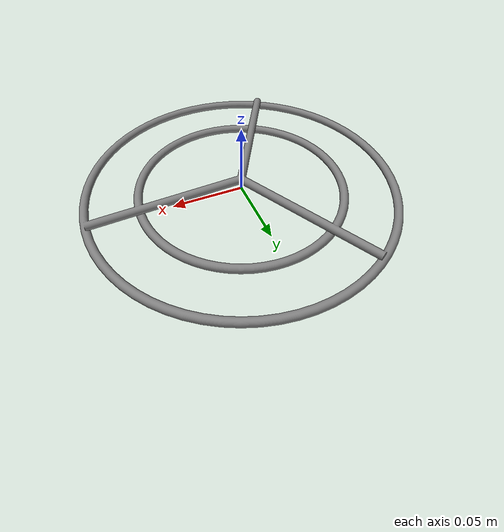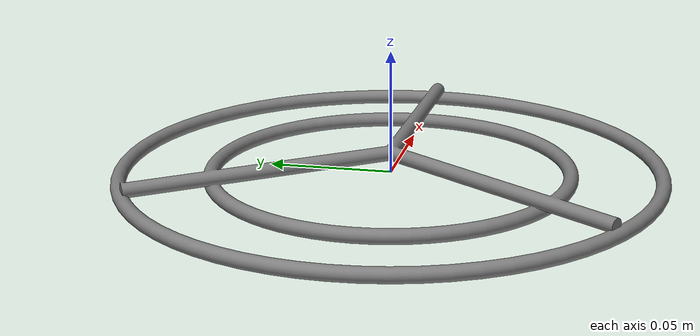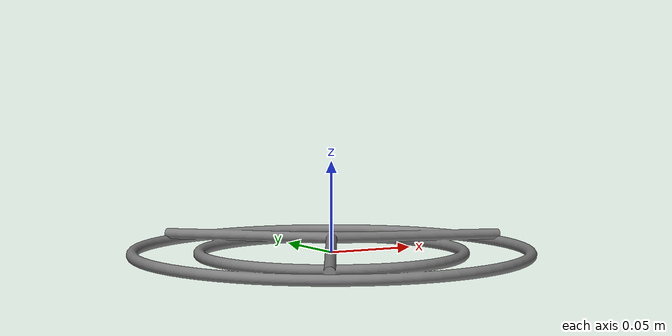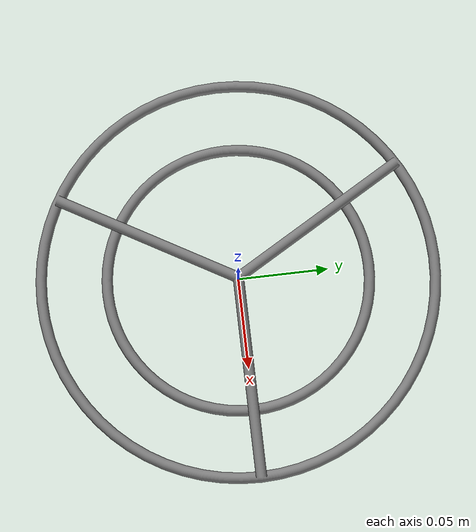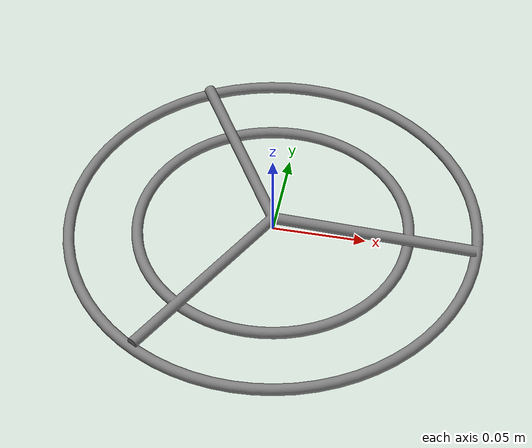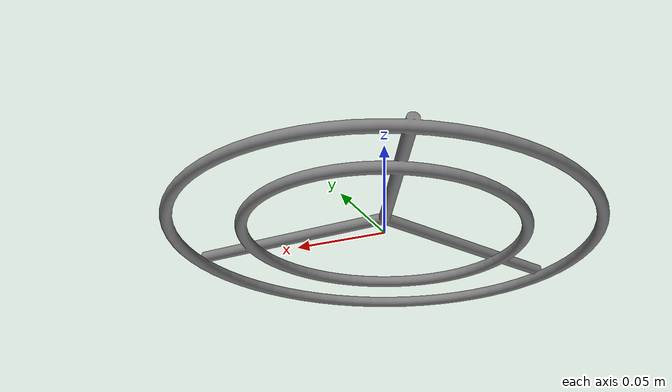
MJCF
<mujoco model="wine_glass_rack_base">
  <default>
    <default class="visual">
      <geom group="2" type="mesh" contype="0" conaffinity="0"/>
    </default>
    <default class="collision">
      <geom group="3" type="mesh"/>
    </default>
  </default>
  <asset>
    <mesh file="wine_glass_rack_base.obj"/>
    <mesh file="wine_glass_rack_base_collision_0.obj"/>
    <mesh file="wine_glass_rack_base_collision_1.obj"/>
    <mesh file="wine_glass_rack_base_collision_2.obj"/>
    <mesh file="wine_glass_rack_base_collision_3.obj"/>
    <mesh file="wine_glass_rack_base_collision_4.obj"/>
    <mesh file="wine_glass_rack_base_collision_5.obj"/>
    <mesh file="wine_glass_rack_base_collision_6.obj"/>
    <mesh file="wine_glass_rack_base_collision_7.obj"/>
    <mesh file="wine_glass_rack_base_collision_8.obj"/>
    <mesh file="wine_glass_rack_base_collision_9.obj"/>
    <mesh file="wine_glass_rack_base_collision_10.obj"/>
    <mesh file="wine_glass_rack_base_collision_11.obj"/>
    <mesh file="wine_glass_rack_base_collision_12.obj"/>
    <mesh file="wine_glass_rack_base_collision_13.obj"/>
    <mesh file="wine_glass_rack_base_collision_14.obj"/>
    <mesh file="wine_glass_rack_base_collision_15.obj"/>
    <mesh file="wine_glass_rack_base_collision_16.obj"/>
    <mesh file="wine_glass_rack_base_collision_17.obj"/>
    <mesh file="wine_glass_rack_base_collision_18.obj"/>
    <mesh file="wine_glass_rack_base_collision_19.obj"/>
    <mesh file="wine_glass_rack_base_collision_20.obj"/>
    <mesh file="wine_glass_rack_base_collision_21.obj"/>
    <mesh file="wine_glass_rack_base_collision_22.obj"/>
    <mesh file="wine_glass_rack_base_collision_23.obj"/>
    <mesh file="wine_glass_rack_base_collision_24.obj"/>
    <mesh file="wine_glass_rack_base_collision_25.obj"/>
    <mesh file="wine_glass_rack_base_collision_26.obj"/>
    <mesh file="wine_glass_rack_base_collision_27.obj"/>
    <mesh file="wine_glass_rack_base_collision_28.obj"/>
    <mesh file="wine_glass_rack_base_collision_29.obj"/>
    <mesh file="wine_glass_rack_base_collision_30.obj"/>
    <mesh file="wine_glass_rack_base_collision_31.obj"/>
    <mesh file="wine_glass_rack_base_collision_32.obj"/>
    <mesh file="wine_glass_rack_base_collision_33.obj"/>
    <mesh file="wine_glass_rack_base_collision_34.obj"/>
    <mesh file="wine_glass_rack_base_collision_35.obj"/>
    <mesh file="wine_glass_rack_base_collision_36.obj"/>
    <mesh file="wine_glass_rack_base_collision_37.obj"/>
  </asset>
  <worldbody>
    <body name="wine_glass_rack_base">
      <geom mesh="wine_glass_rack_base" class="visual"/>
      <geom mesh="wine_glass_rack_base_collision_0" rgba="0.4703830896133042 0.10962438401937724 0.08677491330890075 1" class="collision"/>
      <geom mesh="wine_glass_rack_base_collision_1" rgba="0.6563887023209273 0.4802503735310417 0.08235744567877634 1" class="collision"/>
      <geom mesh="wine_glass_rack_base_collision_2" rgba="0.06634119272274586 0.807503619932344 0.29864337271308183 1" class="collision"/>
      <geom mesh="wine_glass_rack_base_collision_3" rgba="0.21878933060246242 0.3712597839419989 0.8607753799673301 1" class="collision"/>
      <geom mesh="wine_glass_rack_base_collision_4" rgba="0.016572217533480593 0.5415044889657187 0.4444585130111446 1" class="collision"/>
      <geom mesh="wine_glass_rack_base_collision_5" rgba="0.27026582789065956 0.7452656757848937 0.16793025639082837 1" class="collision"/>
      <geom mesh="wine_glass_rack_base_collision_6" rgba="0.7293634901648172 0.15776662875632375 0.6125038420035501 1" class="collision"/>
      <geom mesh="wine_glass_rack_base_collision_7" rgba="0.48452314655426953 0.11474088323072296 0.8595326312120578 1" class="collision"/>
      <geom mesh="wine_glass_rack_base_collision_8" rgba="0.119084610103116 0.21300843814836246 0.3318935003878013 1" class="collision"/>
      <geom mesh="wine_glass_rack_base_collision_9" rgba="0.949869478748043 0.8082336594166458 0.008076931289403677 1" class="collision"/>
      <geom mesh="wine_glass_rack_base_collision_10" rgba="0.6669054477555009 0.8576388671764433 0.7592677917314266 1" class="collision"/>
      <geom mesh="wine_glass_rack_base_collision_11" rgba="0.5912421036933934 0.05856885917217536 0.04205603756176002 1" class="collision"/>
      <geom mesh="wine_glass_rack_base_collision_12" rgba="0.04494602202510811 0.29600756114897786 0.789961236384005 1" class="collision"/>
      <geom mesh="wine_glass_rack_base_collision_13" rgba="0.524837348409882 0.045757446614247965 0.16661690407478624 1" class="collision"/>
      <geom mesh="wine_glass_rack_base_collision_14" rgba="0.5400481862095733 0.7991755047992306 0.08600825659937783 1" class="collision"/>
      <geom mesh="wine_glass_rack_base_collision_15" rgba="0.7526788241445609 0.72396888074684 0.9554734895770808 1" class="collision"/>
      <geom mesh="wine_glass_rack_base_collision_16" rgba="0.7527913009272467 0.5984445805640856 0.9519892932741925 1" class="collision"/>
      <geom mesh="wine_glass_rack_base_collision_17" rgba="0.2674187633393659 0.14966271700854072 0.4142724150719497 1" class="collision"/>
      <geom mesh="wine_glass_rack_base_collision_18" rgba="0.8477241227519613 0.9237998012699556 0.7171217147365658 1" class="collision"/>
      <geom mesh="wine_glass_rack_base_collision_19" rgba="0.8396791493589287 0.7324506679798384 0.8799116100122163 1" class="collision"/>
      <geom mesh="wine_glass_rack_base_collision_20" rgba="0.8886457264014813 0.6025988319795783 0.21178760548422004 1" class="collision"/>
      <geom mesh="wine_glass_rack_base_collision_21" rgba="0.038431835031717654 0.13818294232156547 0.007492368976660502 1" class="collision"/>
      <geom mesh="wine_glass_rack_base_collision_22" rgba="0.41416836803232426 0.4311829014642138 0.9779679675796386 1" class="collision"/>
      <geom mesh="wine_glass_rack_base_collision_23" rgba="0.23260599850618957 0.646142090646975 0.41737077176672577 1" class="collision"/>
      <geom mesh="wine_glass_rack_base_collision_24" rgba="0.3647281287544507 0.7539397886124651 0.8621115072388473 1" class="collision"/>
      <geom mesh="wine_glass_rack_base_collision_25" rgba="0.936955948030252 0.8128277388456552 0.013846262456930991 1" class="collision"/>
      <geom mesh="wine_glass_rack_base_collision_26" rgba="0.3489076790671177 0.3559491572105016 0.10149461051524 1" class="collision"/>
      <geom mesh="wine_glass_rack_base_collision_27" rgba="0.43685707920491934 0.9743016938718683 0.5362865233447237 1" class="collision"/>
      <geom mesh="wine_glass_rack_base_collision_28" rgba="0.5644375446254456 0.43480722394312454 0.4548592777285889 1" class="collision"/>
      <geom mesh="wine_glass_rack_base_collision_29" rgba="0.1448439647065468 0.26404665050749365 0.3257025840144018 1" class="collision"/>
      <geom mesh="wine_glass_rack_base_collision_30" rgba="0.6502672164361577 0.731429359993492 0.3686984012200798 1" class="collision"/>
      <geom mesh="wine_glass_rack_base_collision_31" rgba="0.8467763448645855 0.7418405795746301 0.5030431693908564 1" class="collision"/>
      <geom mesh="wine_glass_rack_base_collision_32" rgba="0.14766802639732224 0.733485764557056 0.600765657450186 1" class="collision"/>
      <geom mesh="wine_glass_rack_base_collision_33" rgba="0.001097929497409278 0.6572273876746267 0.8144593313069881 1" class="collision"/>
      <geom mesh="wine_glass_rack_base_collision_34" rgba="0.20513033136315673 0.20620553138228725 0.7771457923712022 1" class="collision"/>
      <geom mesh="wine_glass_rack_base_collision_35" rgba="0.7742127318255431 0.4481078877764755 0.687056585046403 1" class="collision"/>
      <geom mesh="wine_glass_rack_base_collision_36" rgba="0.5375357001418459 0.9768723756495601 0.7531260284227426 1" class="collision"/>
      <geom mesh="wine_glass_rack_base_collision_37" rgba="0.5613885631686649 0.7630807181075052 0.02163658760812015 1" class="collision"/>
    </body>
  </worldbody>
</mujoco>
